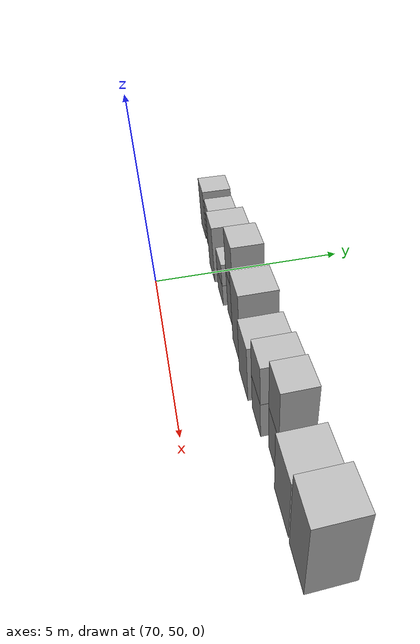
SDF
<sdf version="1.5">
 <world name="default">
  <model name="ground_plane">
   <static>true</static>
   <link name="link">
    <collision name="collision">
     <geometry><plane><normal>0 0 1</normal><size>250 250</size></plane></geometry>
     <surface><friction><ode><mu>1</mu><mu2>1</mu2></ode></friction></surface>
    </collision>
    <visual name="grass">
     <cast_shadows>false</cast_shadows>
     <geometry><mesh><uri>file://grass_plane/meshes/grass_plane.dae</uri></mesh></geometry>
    </visual>
   </link>
  </model>
  <model name="Cardboard_box_333">
   <link name="link_0">
    <pose>68 52 0 0 0 0</pose>
    <inertial>
     <mass>1</mass>
     <inertia>
      <ixx>0.166667</ixx>
      <ixy>0</ixy>
      <ixz>0</ixz>
      <iyy>0.166667</iyy>
      <iyz>0</iyz>
      <izz>0.166667</izz>
     </inertia>
    </inertial>
    <collision name="collision">
     <geometry>
      <mesh>
       <uri>model://Cardboard_box/meshes/cardboard_box.dae</uri>
       <scale>2.01830773559 1.9619546005 3.87089558301</scale>
      </mesh>
     </geometry>
    </collision>
    <visual name="visual">
     <geometry>
      <mesh>
       <uri>model://Cardboard_box/meshes/cardboard_box.dae</uri>
       <scale>2.01830773559 1.9619546005 3.87089558301</scale>
      </mesh>
     </geometry>
    </visual>
   </link>
   <static>1</static>
  </model>
  <model name="Cardboard_box_334">
   <link name="link_0">
    <pose>69 52 0 0 0 0</pose>
    <inertial>
     <mass>1</mass>
     <inertia>
      <ixx>0.166667</ixx>
      <ixy>0</ixy>
      <ixz>0</ixz>
      <iyy>0.166667</iyy>
      <iyz>0</iyz>
      <izz>0.166667</izz>
     </inertia>
    </inertial>
    <collision name="collision">
     <geometry>
      <mesh>
       <uri>model://Cardboard_box/meshes/cardboard_box.dae</uri>
       <scale>2.38049904584 1.91185399154 3.53717673873</scale>
      </mesh>
     </geometry>
    </collision>
    <visual name="visual">
     <geometry>
      <mesh>
       <uri>model://Cardboard_box/meshes/cardboard_box.dae</uri>
       <scale>2.38049904584 1.91185399154 3.53717673873</scale>
      </mesh>
     </geometry>
    </visual>
   </link>
   <static>1</static>
  </model>
  <model name="Cardboard_box_335">
   <link name="link_0">
    <pose>70 52 0 0 0 0</pose>
    <inertial>
     <mass>1</mass>
     <inertia>
      <ixx>0.166667</ixx>
      <ixy>0</ixy>
      <ixz>0</ixz>
      <iyy>0.166667</iyy>
      <iyz>0</iyz>
      <izz>0.166667</izz>
     </inertia>
    </inertial>
    <collision name="collision">
     <geometry>
      <mesh>
       <uri>model://Cardboard_box/meshes/cardboard_box.dae</uri>
       <scale>1.99271172593 2.42707311743 4.25059633826</scale>
      </mesh>
     </geometry>
    </collision>
    <visual name="visual">
     <geometry>
      <mesh>
       <uri>model://Cardboard_box/meshes/cardboard_box.dae</uri>
       <scale>1.99271172593 2.42707311743 4.25059633826</scale>
      </mesh>
     </geometry>
    </visual>
   </link>
   <static>1</static>
  </model>
  <model name="Cardboard_box_336">
   <link name="link_0">
    <pose>71 52 0 0 0 0</pose>
    <inertial>
     <mass>1</mass>
     <inertia>
      <ixx>0.166667</ixx>
      <ixy>0</ixy>
      <ixz>0</ixz>
      <iyy>0.166667</iyy>
      <iyz>0</iyz>
      <izz>0.166667</izz>
     </inertia>
    </inertial>
    <collision name="collision">
     <geometry>
      <mesh>
       <uri>model://Cardboard_box/meshes/cardboard_box.dae</uri>
       <scale>1.83015336543 2.20204105098 1.6033872549</scale>
      </mesh>
     </geometry>
    </collision>
    <visual name="visual">
     <geometry>
      <mesh>
       <uri>model://Cardboard_box/meshes/cardboard_box.dae</uri>
       <scale>1.83015336543 2.20204105098 1.6033872549</scale>
      </mesh>
     </geometry>
    </visual>
   </link>
   <static>1</static>
  </model>
  <model name="Cardboard_box_top_336">
   <link name="link_0">
    <pose>71 52 0.64135490196 0 0 0</pose>
    <inertial>
     <mass>1</mass>
     <inertia>
      <ixx>0.166667</ixx>
      <ixy>0</ixy>
      <ixz>0</ixz>
      <iyy>0.166667</iyy>
      <iyz>0</iyz>
      <izz>0.166667</izz>
     </inertia>
    </inertial>
    <collision name="collision">
     <geometry>
      <mesh>
       <uri>model://Cardboard_box/meshes/cardboard_box.dae</uri>
       <scale>1.83015336543 2.20204105098 1.6033872549</scale>
      </mesh>
     </geometry>
    </collision>
    <visual name="visual">
     <geometry>
      <mesh>
       <uri>model://Cardboard_box/meshes/cardboard_box.dae</uri>
       <scale>1.83015336543 2.20204105098 1.6033872549</scale>
      </mesh>
     </geometry>
    </visual>
   </link>
   <static>1</static>
  </model>
  <model name="Cardboard_box_337">
   <link name="link_0">
    <pose>72 52 0 0 0 0</pose>
    <inertial>
     <mass>1</mass>
     <inertia>
      <ixx>0.166667</ixx>
      <ixy>0</ixy>
      <ixz>0</ixz>
      <iyy>0.166667</iyy>
      <iyz>0</iyz>
      <izz>0.166667</izz>
     </inertia>
    </inertial>
    <collision name="collision">
     <geometry>
      <mesh>
       <uri>model://Cardboard_box/meshes/cardboard_box.dae</uri>
       <scale>2.06607676848 1.83364625135 3.15371548537</scale>
      </mesh>
     </geometry>
    </collision>
    <visual name="visual">
     <geometry>
      <mesh>
       <uri>model://Cardboard_box/meshes/cardboard_box.dae</uri>
       <scale>2.06607676848 1.83364625135 3.15371548537</scale>
      </mesh>
     </geometry>
    </visual>
   </link>
   <static>1</static>
  </model>
  <model name="Cardboard_box_top_337">
   <link name="link_0">
    <pose>72 52 1.26148619415 0 0 0</pose>
    <inertial>
     <mass>1</mass>
     <inertia>
      <ixx>0.166667</ixx>
      <ixy>0</ixy>
      <ixz>0</ixz>
      <iyy>0.166667</iyy>
      <iyz>0</iyz>
      <izz>0.166667</izz>
     </inertia>
    </inertial>
    <collision name="collision">
     <geometry>
      <mesh>
       <uri>model://Cardboard_box/meshes/cardboard_box.dae</uri>
       <scale>2.06607676848 1.83364625135 3.15371548537</scale>
      </mesh>
     </geometry>
    </collision>
    <visual name="visual">
     <geometry>
      <mesh>
       <uri>model://Cardboard_box/meshes/cardboard_box.dae</uri>
       <scale>2.06607676848 1.83364625135 3.15371548537</scale>
      </mesh>
     </geometry>
    </visual>
   </link>
   <static>1</static>
  </model>
  <model name="Cardboard_box_338">
   <link name="link_0">
    <pose>73 52 0 0 0 0</pose>
    <inertial>
     <mass>1</mass>
     <inertia>
      <ixx>0.166667</ixx>
      <ixy>0</ixy>
      <ixz>0</ixz>
      <iyy>0.166667</iyy>
      <iyz>0</iyz>
      <izz>0.166667</izz>
     </inertia>
    </inertial>
    <collision name="collision">
     <geometry>
      <mesh>
       <uri>model://Cardboard_box/meshes/cardboard_box.dae</uri>
       <scale>2.14815705 2.20633709589 5.16614733079</scale>
      </mesh>
     </geometry>
    </collision>
    <visual name="visual">
     <geometry>
      <mesh>
       <uri>model://Cardboard_box/meshes/cardboard_box.dae</uri>
       <scale>2.14815705 2.20633709589 5.16614733079</scale>
      </mesh>
     </geometry>
    </visual>
   </link>
   <static>1</static>
  </model>
  <model name="Cardboard_box_339">
   <link name="link_0">
    <pose>74 52 0 0 0 0</pose>
    <inertial>
     <mass>1</mass>
     <inertia>
      <ixx>0.166667</ixx>
      <ixy>0</ixy>
      <ixz>0</ixz>
      <iyy>0.166667</iyy>
      <iyz>0</iyz>
      <izz>0.166667</izz>
     </inertia>
    </inertial>
    <collision name="collision">
     <geometry>
      <mesh>
       <uri>model://Cardboard_box/meshes/cardboard_box.dae</uri>
       <scale>2.20399550111 2.47078991488 3.94721178809</scale>
      </mesh>
     </geometry>
    </collision>
    <visual name="visual">
     <geometry>
      <mesh>
       <uri>model://Cardboard_box/meshes/cardboard_box.dae</uri>
       <scale>2.20399550111 2.47078991488 3.94721178809</scale>
      </mesh>
     </geometry>
    </visual>
   </link>
   <static>1</static>
  </model>
  <model name="Cardboard_box_340">
   <link name="link_0">
    <pose>75 52 0 0 0 0</pose>
    <inertial>
     <mass>1</mass>
     <inertia>
      <ixx>0.166667</ixx>
      <ixy>0</ixy>
      <ixz>0</ixz>
      <iyy>0.166667</iyy>
      <iyz>0</iyz>
      <izz>0.166667</izz>
     </inertia>
    </inertial>
    <collision name="collision">
     <geometry>
      <mesh>
       <uri>model://Cardboard_box/meshes/cardboard_box.dae</uri>
       <scale>1.88462539522 2.21663805252 2.5335225984</scale>
      </mesh>
     </geometry>
    </collision>
    <visual name="visual">
     <geometry>
      <mesh>
       <uri>model://Cardboard_box/meshes/cardboard_box.dae</uri>
       <scale>1.88462539522 2.21663805252 2.5335225984</scale>
      </mesh>
     </geometry>
    </visual>
   </link>
   <static>1</static>
  </model>
  <model name="Cardboard_box_top_340">
   <link name="link_0">
    <pose>75 52 1.01340903936 0 0 0</pose>
    <inertial>
     <mass>1</mass>
     <inertia>
      <ixx>0.166667</ixx>
      <ixy>0</ixy>
      <ixz>0</ixz>
      <iyy>0.166667</iyy>
      <iyz>0</iyz>
      <izz>0.166667</izz>
     </inertia>
    </inertial>
    <collision name="collision">
     <geometry>
      <mesh>
       <uri>model://Cardboard_box/meshes/cardboard_box.dae</uri>
       <scale>1.88462539522 2.21663805252 2.5335225984</scale>
      </mesh>
     </geometry>
    </collision>
    <visual name="visual">
     <geometry>
      <mesh>
       <uri>model://Cardboard_box/meshes/cardboard_box.dae</uri>
       <scale>1.88462539522 2.21663805252 2.5335225984</scale>
      </mesh>
     </geometry>
    </visual>
   </link>
   <static>1</static>
  </model>
  <model name="Cardboard_box_341">
   <link name="link_0">
    <pose>76 52 0 0 0 0</pose>
    <inertial>
     <mass>1</mass>
     <inertia>
      <ixx>0.166667</ixx>
      <ixy>0</ixy>
      <ixz>0</ixz>
      <iyy>0.166667</iyy>
      <iyz>0</iyz>
      <izz>0.166667</izz>
     </inertia>
    </inertial>
    <collision name="collision">
     <geometry>
      <mesh>
       <uri>model://Cardboard_box/meshes/cardboard_box.dae</uri>
       <scale>1.81542895038 1.71784194613 3.11317898156</scale>
      </mesh>
     </geometry>
    </collision>
    <visual name="visual">
     <geometry>
      <mesh>
       <uri>model://Cardboard_box/meshes/cardboard_box.dae</uri>
       <scale>1.81542895038 1.71784194613 3.11317898156</scale>
      </mesh>
     </geometry>
    </visual>
   </link>
   <static>1</static>
  </model>
  <model name="Cardboard_box_top_341">
   <link name="link_0">
    <pose>76 52 1.24527159262 0 0 0</pose>
    <inertial>
     <mass>1</mass>
     <inertia>
      <ixx>0.166667</ixx>
      <ixy>0</ixy>
      <ixz>0</ixz>
      <iyy>0.166667</iyy>
      <iyz>0</iyz>
      <izz>0.166667</izz>
     </inertia>
    </inertial>
    <collision name="collision">
     <geometry>
      <mesh>
       <uri>model://Cardboard_box/meshes/cardboard_box.dae</uri>
       <scale>1.81542895038 1.71784194613 3.11317898156</scale>
      </mesh>
     </geometry>
    </collision>
    <visual name="visual">
     <geometry>
      <mesh>
       <uri>model://Cardboard_box/meshes/cardboard_box.dae</uri>
       <scale>1.81542895038 1.71784194613 3.11317898156</scale>
      </mesh>
     </geometry>
    </visual>
   </link>
   <static>1</static>
  </model>
  <model name="Cardboard_box_342">
   <link name="link_0">
    <pose>77 52 0 0 0 0</pose>
    <inertial>
     <mass>1</mass>
     <inertia>
      <ixx>0.166667</ixx>
      <ixy>0</ixy>
      <ixz>0</ixz>
      <iyy>0.166667</iyy>
      <iyz>0</iyz>
      <izz>0.166667</izz>
     </inertia>
    </inertial>
    <collision name="collision">
     <geometry>
      <mesh>
       <uri>model://Cardboard_box/meshes/cardboard_box.dae</uri>
       <scale>2.40941365378 2.29032935293 4.30974795342</scale>
      </mesh>
     </geometry>
    </collision>
    <visual name="visual">
     <geometry>
      <mesh>
       <uri>model://Cardboard_box/meshes/cardboard_box.dae</uri>
       <scale>2.40941365378 2.29032935293 4.30974795342</scale>
      </mesh>
     </geometry>
    </visual>
   </link>
   <static>1</static>
  </model>
  <model name="Cardboard_box_343">
   <link name="link_0">
    <pose>78 52 0 0 0 0</pose>
    <inertial>
     <mass>1</mass>
     <inertia>
      <ixx>0.166667</ixx>
      <ixy>0</ixy>
      <ixz>0</ixz>
      <iyy>0.166667</iyy>
      <iyz>0</iyz>
      <izz>0.166667</izz>
     </inertia>
    </inertial>
    <collision name="collision">
     <geometry>
      <mesh>
       <uri>model://Cardboard_box/meshes/cardboard_box.dae</uri>
       <scale>2.14890838849 2.35149916488 5.40772702058</scale>
      </mesh>
     </geometry>
    </collision>
    <visual name="visual">
     <geometry>
      <mesh>
       <uri>model://Cardboard_box/meshes/cardboard_box.dae</uri>
       <scale>2.14890838849 2.35149916488 5.40772702058</scale>
      </mesh>
     </geometry>
    </visual>
   </link>
   <static>1</static>
  </model>
 </world>
</sdf>
